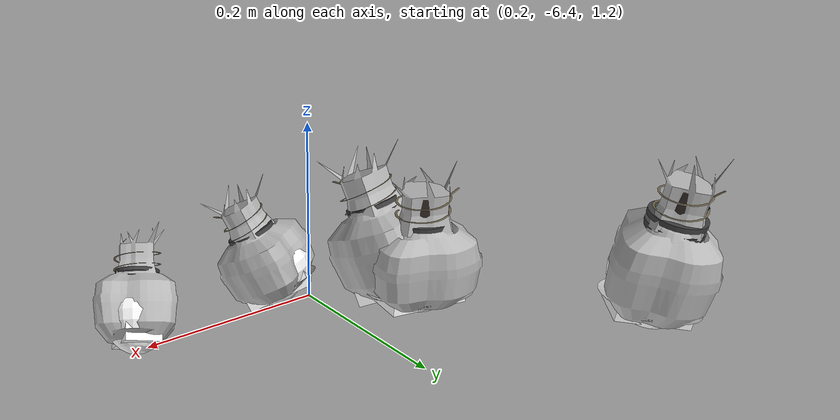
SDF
<sdf version="1.11">
 <world name="peach_orchard">
  <model name="ground">
   <static>true</static>
   <link name="link">
    <visual name="soil">
     <geometry><plane><normal>0 0 1</normal><size>32 22</size></plane></geometry>
     <material>
      <ambient>1 1 1 1</ambient>
      <diffuse>1 1 1 1</diffuse>
      <specular>0.1 0.1 0.1 1</specular>
      <pbr>
       <metal>
        <albedo_map>textures/soil_albedo.png</albedo_map>
        <normal_map type="tangent">textures/soil_normal.png</normal_map>
        <roughness>0.95</roughness>
        <metalness>0</metalness>
       </metal>
      </pbr>
     </material>
    </visual>
    <collision name="c_soil">
     <geometry><plane><normal>0 0 1</normal><size>32 22</size></plane></geometry>
    </collision>
   </link>
  </model>
  <model name="peach_tree_r2_t0_06">
   <pose>0.464874 -6.29415 1.27 0 0.657469 -2.15494</pose>
   <static>true</static>
   <link name="bag">
    <visual name="bag_mesh">
     <pose>0 0 0.0469201 0 0 -0</pose>
     <geometry>
      <mesh><uri>model://peach_sim/meshes/bagged_peach.glb</uri><scale>0.927321 1.12848 1.06637</scale></mesh>
     </geometry>
    </visual>
    <visual name="body">
     <pose>0 0 0.0289201 0 0 0</pose>
     <geometry><ellipsoid><radii>0.0347745 0.0293405 0.0312337</radii></ellipsoid></geometry>
     <material>
      <ambient>1 1 1 1</ambient>
      <diffuse>1 1 1 1</diffuse>
      <specular>0.1 0.1 0.1 1</specular>
      <pbr>
       <metal>
        <albedo_map>textures/paper_bag_albedo.png</albedo_map>
        <normal_map type="tangent">textures/paper_bag_normal.png</normal_map>
        <roughness>0.72</roughness>
        <metalness>0</metalness>
       </metal>
      </pbr>
     </material>
    </visual>
    <visual name="bottom_fold">
     <pose>0 0 0.012 0 0 0.35</pose>
     <geometry><box><size>0.0539005 0.0337416 0.022</size></box></geometry>
     <material>
      <ambient>1 1 1 1</ambient>
      <diffuse>1 1 1 1</diffuse>
      <specular>0.1 0.1 0.1 1</specular>
      <pbr>
       <metal>
        <albedo_map>textures/paper_bag_albedo.png</albedo_map>
        <normal_map type="tangent">textures/paper_bag_normal.png</normal_map>
        <roughness>0.8</roughness>
        <metalness>0</metalness>
       </metal>
      </pbr>
     </material>
    </visual>
    <visual name="fruit">
     <pose>0 0 0.0197675 0 0 0</pose>
     <geometry><sphere><radius>0.0267982</radius></sphere></geometry>
     <material>
      <ambient>1 1 1 1</ambient>
      <diffuse>1 1 1 1</diffuse>
      <specular>0.1 0.1 0.1 1</specular>
      <pbr>
       <metal>
        <albedo_map>textures/fruit_skin_albedo.png</albedo_map>
        <normal_map type="tangent">textures/fruit_skin_normal.png</normal_map>
        <roughness>0.55</roughness>
        <metalness>0</metalness>
       </metal>
      </pbr>
     </material>
    </visual>
    <visual name="neck">
     <pose>0 0 0.0668402 0 0 0</pose>
     <geometry><cylinder><radius>0.013</radius><length>0.018</length></cylinder></geometry>
     <material>
      <ambient>1 1 1 1</ambient>
      <diffuse>1 1 1 1</diffuse>
      <specular>0.1 0.1 0.1 1</specular>
      <pbr>
       <metal>
        <albedo_map>textures/paper_bag_albedo.png</albedo_map>
        <normal_map type="tangent">textures/paper_bag_normal.png</normal_map>
        <roughness>0.75</roughness>
        <metalness>0</metalness>
       </metal>
      </pbr>
     </material>
    </visual>
    <visual name="gather">
     <pose>0 0 0.0478402 0 0 0</pose>
     <geometry><cylinder><radius>0.019</radius><length>0.02</length></cylinder></geometry>
     <material>
      <ambient>1 1 1 1</ambient>
      <diffuse>1 1 1 1</diffuse>
      <specular>0.1 0.1 0.1 1</specular>
      <pbr>
       <metal>
        <albedo_map>textures/paper_bag_albedo.png</albedo_map>
        <normal_map type="tangent">textures/paper_bag_normal.png</normal_map>
        <roughness>0.8</roughness>
        <metalness>0</metalness>
       </metal>
      </pbr>
     </material>
    </visual>
    <visual name="inner_paper">
     <pose>0 0 0.0718402 0 0 0</pose>
     <geometry><cylinder><radius>0.01</radius><length>0.008</length></cylinder></geometry>
     <material>
      <ambient>0.180392 0.14902 0.133333 1</ambient>
      <diffuse>0.180392 0.14902 0.133333 1</diffuse>
      <specular>0.1 0.1 0.1 1</specular>
     </material>
    </visual>
    <visual name="wire_0">
     <pose>0 0 0.0618402 0 0 0</pose>
     <geometry><cylinder><radius>0.0205</radius><length>0.0035</length></cylinder></geometry>
     <material>
      <ambient>0.25 0.25 0.25 1</ambient>
      <diffuse>0.25 0.25 0.25 1</diffuse>
      <specular>0.1 0.1 0.1 1</specular>
     </material>
    </visual>
    <visual name="wire_1">
     <pose>0 0 0.0688402 0 0 0</pose>
     <geometry><cylinder><radius>0.0205</radius><length>0.0035</length></cylinder></geometry>
     <material>
      <ambient>0.25 0.25 0.25 1</ambient>
      <diffuse>0.25 0.25 0.25 1</diffuse>
      <specular>0.1 0.1 0.1 1</specular>
     </material>
    </visual>
    <visual name="wire_tail">
     <pose>0.01 0 0.0698402 0 0.521618 0</pose>
     <geometry><cylinder><radius>0.0012</radius><length>0.026</length></cylinder></geometry>
     <material>
      <ambient>0.25 0.25 0.25 1</ambient>
      <diffuse>0.25 0.25 0.25 1</diffuse>
      <specular>0.1 0.1 0.1 1</specular>
     </material>
    </visual>
    <collision name="c_body">
     <pose>0 0 0.0289201 0 0 0</pose>
     <geometry><cylinder><radius>0.0347745</radius><length>0.0578402</length></cylinder></geometry>
    </collision>
   </link>
  </model>
  <model name="peach_tree_r2_t0_08">
   <pose>0.379259 -6.18105 1.34399 0 0.476643 -0.948095</pose>
   <static>true</static>
   <link name="bag">
    <visual name="bag_mesh">
     <pose>0 0 0.0427684 0 0 -0</pose>
     <geometry>
      <mesh><uri>model://peach_sim/meshes/bagged_peach.glb</uri><scale>0.965336 1.16917 0.972009</scale></mesh>
     </geometry>
    </visual>
    <visual name="body">
     <pose>0 0 0.0247684 0 0 0</pose>
     <geometry><ellipsoid><radii>0.0362001 0.0303985 0.0267499</radii></ellipsoid></geometry>
     <material>
      <ambient>1 1 1 1</ambient>
      <diffuse>1 1 1 1</diffuse>
      <specular>0.1 0.1 0.1 1</specular>
      <pbr>
       <metal>
        <albedo_map>textures/paper_bag_albedo.png</albedo_map>
        <normal_map type="tangent">textures/paper_bag_normal.png</normal_map>
        <roughness>0.72</roughness>
        <metalness>0</metalness>
       </metal>
      </pbr>
     </material>
    </visual>
    <visual name="bottom_fold">
     <pose>0 0 0.012 0 0 0.35</pose>
     <geometry><box><size>0.0561102 0.0349583 0.022</size></box></geometry>
     <material>
      <ambient>1 1 1 1</ambient>
      <diffuse>1 1 1 1</diffuse>
      <specular>0.1 0.1 0.1 1</specular>
      <pbr>
       <metal>
        <albedo_map>textures/paper_bag_albedo.png</albedo_map>
        <normal_map type="tangent">textures/paper_bag_normal.png</normal_map>
        <roughness>0.8</roughness>
        <metalness>0</metalness>
       </metal>
      </pbr>
     </material>
    </visual>
    <visual name="fruit">
     <pose>0 0 0.0195773 0 0 0</pose>
     <geometry><sphere><radius>0.0266004</radius></sphere></geometry>
     <material>
      <ambient>1 1 1 1</ambient>
      <diffuse>1 1 1 1</diffuse>
      <specular>0.1 0.1 0.1 1</specular>
      <pbr>
       <metal>
        <albedo_map>textures/fruit_skin_albedo.png</albedo_map>
        <normal_map type="tangent">textures/fruit_skin_normal.png</normal_map>
        <roughness>0.55</roughness>
        <metalness>0</metalness>
       </metal>
      </pbr>
     </material>
    </visual>
    <visual name="neck">
     <pose>0 0 0.0585368 0 0 0</pose>
     <geometry><cylinder><radius>0.013</radius><length>0.018</length></cylinder></geometry>
     <material>
      <ambient>1 1 1 1</ambient>
      <diffuse>1 1 1 1</diffuse>
      <specular>0.1 0.1 0.1 1</specular>
      <pbr>
       <metal>
        <albedo_map>textures/paper_bag_albedo.png</albedo_map>
        <normal_map type="tangent">textures/paper_bag_normal.png</normal_map>
        <roughness>0.75</roughness>
        <metalness>0</metalness>
       </metal>
      </pbr>
     </material>
    </visual>
    <visual name="gather">
     <pose>0 0 0.0395368 0 0 0</pose>
     <geometry><cylinder><radius>0.019</radius><length>0.02</length></cylinder></geometry>
     <material>
      <ambient>1 1 1 1</ambient>
      <diffuse>1 1 1 1</diffuse>
      <specular>0.1 0.1 0.1 1</specular>
      <pbr>
       <metal>
        <albedo_map>textures/paper_bag_albedo.png</albedo_map>
        <normal_map type="tangent">textures/paper_bag_normal.png</normal_map>
        <roughness>0.8</roughness>
        <metalness>0</metalness>
       </metal>
      </pbr>
     </material>
    </visual>
    <visual name="inner_paper">
     <pose>0 0 0.0635368 0 0 0</pose>
     <geometry><cylinder><radius>0.01</radius><length>0.008</length></cylinder></geometry>
     <material>
      <ambient>0.180392 0.14902 0.133333 1</ambient>
      <diffuse>0.180392 0.14902 0.133333 1</diffuse>
      <specular>0.1 0.1 0.1 1</specular>
     </material>
    </visual>
    <visual name="wire_0">
     <pose>0 0 0.0535368 0 0 0</pose>
     <geometry><cylinder><radius>0.0205</radius><length>0.0035</length></cylinder></geometry>
     <material>
      <ambient>0.25 0.25 0.25 1</ambient>
      <diffuse>0.25 0.25 0.25 1</diffuse>
      <specular>0.1 0.1 0.1 1</specular>
     </material>
    </visual>
    <visual name="wire_1">
     <pose>0 0 0.0605368 0 0 0</pose>
     <geometry><cylinder><radius>0.0205</radius><length>0.0035</length></cylinder></geometry>
     <material>
      <ambient>0.25 0.25 0.25 1</ambient>
      <diffuse>0.25 0.25 0.25 1</diffuse>
      <specular>0.1 0.1 0.1 1</specular>
     </material>
    </visual>
    <visual name="wire_tail">
     <pose>0.01 0 0.0615368 0 0.521618 0</pose>
     <geometry><cylinder><radius>0.0012</radius><length>0.026</length></cylinder></geometry>
     <material>
      <ambient>0.25 0.25 0.25 1</ambient>
      <diffuse>0.25 0.25 0.25 1</diffuse>
      <specular>0.1 0.1 0.1 1</specular>
     </material>
    </visual>
    <collision name="c_body">
     <pose>0 0 0.0247684 0 0 0</pose>
     <geometry><cylinder><radius>0.0362001</radius><length>0.0495368</length></cylinder></geometry>
    </collision>
   </link>
  </model>
  <model name="peach_tree_r2_t0_09">
   <pose>0.360717 -6.03965 1.39789 0 0.410333 -1.22162</pose>
   <static>true</static>
   <link name="bag">
    <visual name="bag_mesh">
     <pose>0 0 0.0487442 0 0 -0</pose>
     <geometry>
      <mesh><uri>model://peach_sim/meshes/bagged_peach.glb</uri><scale>1.0778 1.21982 1.10782</scale></mesh>
     </geometry>
    </visual>
    <visual name="body">
     <pose>0 0 0.0307442 0 0 0</pose>
     <geometry><ellipsoid><radii>0.0404176 0.0317154 0.0332037</radii></ellipsoid></geometry>
     <material>
      <ambient>1 1 1 1</ambient>
      <diffuse>1 1 1 1</diffuse>
      <specular>0.1 0.1 0.1 1</specular>
      <pbr>
       <metal>
        <albedo_map>textures/paper_bag_albedo.png</albedo_map>
        <normal_map type="tangent">textures/paper_bag_normal.png</normal_map>
        <roughness>0.72</roughness>
        <metalness>0</metalness>
       </metal>
      </pbr>
     </material>
    </visual>
    <visual name="bottom_fold">
     <pose>0 0 0.012 0 0 0.35</pose>
     <geometry><box><size>0.0626472 0.0364727 0.022</size></box></geometry>
     <material>
      <ambient>1 1 1 1</ambient>
      <diffuse>1 1 1 1</diffuse>
      <specular>0.1 0.1 0.1 1</specular>
      <pbr>
       <metal>
        <albedo_map>textures/paper_bag_albedo.png</albedo_map>
        <normal_map type="tangent">textures/paper_bag_normal.png</normal_map>
        <roughness>0.8</roughness>
        <metalness>0</metalness>
       </metal>
      </pbr>
     </material>
    </visual>
    <visual name="fruit">
     <pose>0 0 0.0215987 0 0 0</pose>
     <geometry><sphere><radius>0.0287026</radius></sphere></geometry>
     <material>
      <ambient>1 1 1 1</ambient>
      <diffuse>1 1 1 1</diffuse>
      <specular>0.1 0.1 0.1 1</specular>
      <pbr>
       <metal>
        <albedo_map>textures/fruit_skin_albedo.png</albedo_map>
        <normal_map type="tangent">textures/fruit_skin_normal.png</normal_map>
        <roughness>0.55</roughness>
        <metalness>0</metalness>
       </metal>
      </pbr>
     </material>
    </visual>
    <visual name="neck">
     <pose>0 0 0.0704883 0 0 0</pose>
     <geometry><cylinder><radius>0.013</radius><length>0.018</length></cylinder></geometry>
     <material>
      <ambient>1 1 1 1</ambient>
      <diffuse>1 1 1 1</diffuse>
      <specular>0.1 0.1 0.1 1</specular>
      <pbr>
       <metal>
        <albedo_map>textures/paper_bag_albedo.png</albedo_map>
        <normal_map type="tangent">textures/paper_bag_normal.png</normal_map>
        <roughness>0.75</roughness>
        <metalness>0</metalness>
       </metal>
      </pbr>
     </material>
    </visual>
    <visual name="gather">
     <pose>0 0 0.0514883 0 0 0</pose>
     <geometry><cylinder><radius>0.019</radius><length>0.02</length></cylinder></geometry>
     <material>
      <ambient>1 1 1 1</ambient>
      <diffuse>1 1 1 1</diffuse>
      <specular>0.1 0.1 0.1 1</specular>
      <pbr>
       <metal>
        <albedo_map>textures/paper_bag_albedo.png</albedo_map>
        <normal_map type="tangent">textures/paper_bag_normal.png</normal_map>
        <roughness>0.8</roughness>
        <metalness>0</metalness>
       </metal>
      </pbr>
     </material>
    </visual>
    <visual name="inner_paper">
     <pose>0 0 0.0754883 0 0 0</pose>
     <geometry><cylinder><radius>0.01</radius><length>0.008</length></cylinder></geometry>
     <material>
      <ambient>0.180392 0.14902 0.133333 1</ambient>
      <diffuse>0.180392 0.14902 0.133333 1</diffuse>
      <specular>0.1 0.1 0.1 1</specular>
     </material>
    </visual>
    <visual name="wire_0">
     <pose>0 0 0.0654883 0 0 0</pose>
     <geometry><cylinder><radius>0.0205</radius><length>0.0035</length></cylinder></geometry>
     <material>
      <ambient>0.25 0.25 0.25 1</ambient>
      <diffuse>0.25 0.25 0.25 1</diffuse>
      <specular>0.1 0.1 0.1 1</specular>
     </material>
    </visual>
    <visual name="wire_1">
     <pose>0 0 0.0724883 0 0 0</pose>
     <geometry><cylinder><radius>0.0205</radius><length>0.0035</length></cylinder></geometry>
     <material>
      <ambient>0.25 0.25 0.25 1</ambient>
      <diffuse>0.25 0.25 0.25 1</diffuse>
      <specular>0.1 0.1 0.1 1</specular>
     </material>
    </visual>
    <visual name="wire_tail">
     <pose>0.01 0 0.0734883 0 0.521618 0</pose>
     <geometry><cylinder><radius>0.0012</radius><length>0.026</length></cylinder></geometry>
     <material>
      <ambient>0.25 0.25 0.25 1</ambient>
      <diffuse>0.25 0.25 0.25 1</diffuse>
      <specular>0.1 0.1 0.1 1</specular>
     </material>
    </visual>
    <collision name="c_body">
     <pose>0 0 0.0307442 0 0 0</pose>
     <geometry><cylinder><radius>0.0404176</radius><length>0.0614883</length></cylinder></geometry>
    </collision>
   </link>
  </model>
  <model name="peach_tree_r2_t0_10">
   <pose>0.35749 -6.02405 1.39478 0 0.0250314 2.63652</pose>
   <static>true</static>
   <link name="bag">
    <visual name="bag_mesh">
     <pose>0 0 0.0461722 0 0 0</pose>
     <geometry>
      <mesh><uri>model://peach_sim/meshes/bagged_peach.glb</uri><scale>1.08548 1.16093 1.04937</scale></mesh>
     </geometry>
    </visual>
    <visual name="body">
     <pose>0 0 0.0281722 0 0 0</pose>
     <geometry><ellipsoid><radii>0.0407055 0.0301841 0.030426</radii></ellipsoid></geometry>
     <material>
      <ambient>1 1 1 1</ambient>
      <diffuse>1 1 1 1</diffuse>
      <specular>0.1 0.1 0.1 1</specular>
      <pbr>
       <metal>
        <albedo_map>textures/paper_bag_albedo.png</albedo_map>
        <normal_map type="tangent">textures/paper_bag_normal.png</normal_map>
        <roughness>0.72</roughness>
        <metalness>0</metalness>
       </metal>
      </pbr>
     </material>
    </visual>
    <visual name="bottom_fold">
     <pose>0 0 0.012 0 0 0.35</pose>
     <geometry><box><size>0.0630936 0.0347118 0.022</size></box></geometry>
     <material>
      <ambient>1 1 1 1</ambient>
      <diffuse>1 1 1 1</diffuse>
      <specular>0.1 0.1 0.1 1</specular>
      <pbr>
       <metal>
        <albedo_map>textures/paper_bag_albedo.png</albedo_map>
        <normal_map type="tangent">textures/paper_bag_normal.png</normal_map>
        <roughness>0.8</roughness>
        <metalness>0</metalness>
       </metal>
      </pbr>
     </material>
    </visual>
    <visual name="fruit">
     <pose>0 0 0.0170371 0 0 0</pose>
     <geometry><sphere><radius>0.0239586</radius></sphere></geometry>
     <material>
      <ambient>1 1 1 1</ambient>
      <diffuse>1 1 1 1</diffuse>
      <specular>0.1 0.1 0.1 1</specular>
      <pbr>
       <metal>
        <albedo_map>textures/fruit_skin_albedo.png</albedo_map>
        <normal_map type="tangent">textures/fruit_skin_normal.png</normal_map>
        <roughness>0.55</roughness>
        <metalness>0</metalness>
       </metal>
      </pbr>
     </material>
    </visual>
    <visual name="neck">
     <pose>0 0 0.0653444 0 0 0</pose>
     <geometry><cylinder><radius>0.013</radius><length>0.018</length></cylinder></geometry>
     <material>
      <ambient>1 1 1 1</ambient>
      <diffuse>1 1 1 1</diffuse>
      <specular>0.1 0.1 0.1 1</specular>
      <pbr>
       <metal>
        <albedo_map>textures/paper_bag_albedo.png</albedo_map>
        <normal_map type="tangent">textures/paper_bag_normal.png</normal_map>
        <roughness>0.75</roughness>
        <metalness>0</metalness>
       </metal>
      </pbr>
     </material>
    </visual>
    <visual name="gather">
     <pose>0 0 0.0463444 0 0 0</pose>
     <geometry><cylinder><radius>0.019</radius><length>0.02</length></cylinder></geometry>
     <material>
      <ambient>1 1 1 1</ambient>
      <diffuse>1 1 1 1</diffuse>
      <specular>0.1 0.1 0.1 1</specular>
      <pbr>
       <metal>
        <albedo_map>textures/paper_bag_albedo.png</albedo_map>
        <normal_map type="tangent">textures/paper_bag_normal.png</normal_map>
        <roughness>0.8</roughness>
        <metalness>0</metalness>
       </metal>
      </pbr>
     </material>
    </visual>
    <visual name="inner_paper">
     <pose>0 0 0.0703444 0 0 0</pose>
     <geometry><cylinder><radius>0.01</radius><length>0.008</length></cylinder></geometry>
     <material>
      <ambient>0.180392 0.14902 0.133333 1</ambient>
      <diffuse>0.180392 0.14902 0.133333 1</diffuse>
      <specular>0.1 0.1 0.1 1</specular>
     </material>
    </visual>
    <visual name="wire_0">
     <pose>0 0 0.0603444 0 0 0</pose>
     <geometry><cylinder><radius>0.0205</radius><length>0.0035</length></cylinder></geometry>
     <material>
      <ambient>0.25 0.25 0.25 1</ambient>
      <diffuse>0.25 0.25 0.25 1</diffuse>
      <specular>0.1 0.1 0.1 1</specular>
     </material>
    </visual>
    <visual name="wire_1">
     <pose>0 0 0.0673444 0 0 0</pose>
     <geometry><cylinder><radius>0.0205</radius><length>0.0035</length></cylinder></geometry>
     <material>
      <ambient>0.25 0.25 0.25 1</ambient>
      <diffuse>0.25 0.25 0.25 1</diffuse>
      <specular>0.1 0.1 0.1 1</specular>
     </material>
    </visual>
    <visual name="wire_tail">
     <pose>0.01 0 0.0683444 0 0.521618 0</pose>
     <geometry><cylinder><radius>0.0012</radius><length>0.026</length></cylinder></geometry>
     <material>
      <ambient>0.25 0.25 0.25 1</ambient>
      <diffuse>0.25 0.25 0.25 1</diffuse>
      <specular>0.1 0.1 0.1 1</specular>
     </material>
    </visual>
    <collision name="c_body">
     <pose>0 0 0.0281722 0 0 0</pose>
     <geometry><cylinder><radius>0.0407055</radius><length>0.0563444</length></cylinder></geometry>
    </collision>
   </link>
  </model>
  <model name="peach_tree_r2_t0_11">
   <pose>0.316855 -5.83513 1.45 0 0.194589 2.24225</pose>
   <static>true</static>
   <link name="bag">
    <visual name="bag_mesh">
     <pose>0 0 0.0495293 0 0 0</pose>
     <geometry>
      <mesh><uri>model://peach_sim/meshes/bagged_peach.glb</uri><scale>0.925047 1.09797 1.12567</scale></mesh>
     </geometry>
    </visual>
    <visual name="body">
     <pose>0 0 0.0315293 0 0 0</pose>
     <geometry><ellipsoid><radii>0.0346893 0.0285473 0.0340517</radii></ellipsoid></geometry>
     <material>
      <ambient>1 1 1 1</ambient>
      <diffuse>1 1 1 1</diffuse>
      <specular>0.1 0.1 0.1 1</specular>
      <pbr>
       <metal>
        <albedo_map>textures/paper_bag_albedo.png</albedo_map>
        <normal_map type="tangent">textures/paper_bag_normal.png</normal_map>
        <roughness>0.72</roughness>
        <metalness>0</metalness>
       </metal>
      </pbr>
     </material>
    </visual>
    <visual name="bottom_fold">
     <pose>0 0 0.012 0 0 0.35</pose>
     <geometry><box><size>0.0537684 0.0328294 0.022</size></box></geometry>
     <material>
      <ambient>1 1 1 1</ambient>
      <diffuse>1 1 1 1</diffuse>
      <specular>0.1 0.1 0.1 1</specular>
      <pbr>
       <metal>
        <albedo_map>textures/paper_bag_albedo.png</albedo_map>
        <normal_map type="tangent">textures/paper_bag_normal.png</normal_map>
        <roughness>0.8</roughness>
        <metalness>0</metalness>
       </metal>
      </pbr>
     </material>
    </visual>
    <visual name="fruit">
     <pose>0 0 0.0186047 0 0 0</pose>
     <geometry><sphere><radius>0.0255889</radius></sphere></geometry>
     <material>
      <ambient>1 1 1 1</ambient>
      <diffuse>1 1 1 1</diffuse>
      <specular>0.1 0.1 0.1 1</specular>
      <pbr>
       <metal>
        <albedo_map>textures/fruit_skin_albedo.png</albedo_map>
        <normal_map type="tangent">textures/fruit_skin_normal.png</normal_map>
        <roughness>0.55</roughness>
        <metalness>0</metalness>
       </metal>
      </pbr>
     </material>
    </visual>
    <visual name="neck">
     <pose>0 0 0.0720586 0 0 0</pose>
     <geometry><cylinder><radius>0.013</radius><length>0.018</length></cylinder></geometry>
     <material>
      <ambient>1 1 1 1</ambient>
      <diffuse>1 1 1 1</diffuse>
      <specular>0.1 0.1 0.1 1</specular>
      <pbr>
       <metal>
        <albedo_map>textures/paper_bag_albedo.png</albedo_map>
        <normal_map type="tangent">textures/paper_bag_normal.png</normal_map>
        <roughness>0.75</roughness>
        <metalness>0</metalness>
       </metal>
      </pbr>
     </material>
    </visual>
    <visual name="gather">
     <pose>0 0 0.0530586 0 0 0</pose>
     <geometry><cylinder><radius>0.019</radius><length>0.02</length></cylinder></geometry>
     <material>
      <ambient>1 1 1 1</ambient>
      <diffuse>1 1 1 1</diffuse>
      <specular>0.1 0.1 0.1 1</specular>
      <pbr>
       <metal>
        <albedo_map>textures/paper_bag_albedo.png</albedo_map>
        <normal_map type="tangent">textures/paper_bag_normal.png</normal_map>
        <roughness>0.8</roughness>
        <metalness>0</metalness>
       </metal>
      </pbr>
     </material>
    </visual>
    <visual name="inner_paper">
     <pose>0 0 0.0770586 0 0 0</pose>
     <geometry><cylinder><radius>0.01</radius><length>0.008</length></cylinder></geometry>
     <material>
      <ambient>0.180392 0.14902 0.133333 1</ambient>
      <diffuse>0.180392 0.14902 0.133333 1</diffuse>
      <specular>0.1 0.1 0.1 1</specular>
     </material>
    </visual>
    <visual name="wire_0">
     <pose>0 0 0.0670586 0 0 0</pose>
     <geometry><cylinder><radius>0.0205</radius><length>0.0035</length></cylinder></geometry>
     <material>
      <ambient>0.25 0.25 0.25 1</ambient>
      <diffuse>0.25 0.25 0.25 1</diffuse>
      <specular>0.1 0.1 0.1 1</specular>
     </material>
    </visual>
    <visual name="wire_1">
     <pose>0 0 0.0740586 0 0 0</pose>
     <geometry><cylinder><radius>0.0205</radius><length>0.0035</length></cylinder></geometry>
     <material>
      <ambient>0.25 0.25 0.25 1</ambient>
      <diffuse>0.25 0.25 0.25 1</diffuse>
      <specular>0.1 0.1 0.1 1</specular>
     </material>
    </visual>
    <visual name="wire_tail">
     <pose>0.01 0 0.0750586 0 0.521618 0</pose>
     <geometry><cylinder><radius>0.0012</radius><length>0.026</length></cylinder></geometry>
     <material>
      <ambient>0.25 0.25 0.25 1</ambient>
      <diffuse>0.25 0.25 0.25 1</diffuse>
      <specular>0.1 0.1 0.1 1</specular>
     </material>
    </visual>
    <collision name="c_body">
     <pose>0 0 0.0315293 0 0 0</pose>
     <geometry><cylinder><radius>0.0346893</radius><length>0.0630586</length></cylinder></geometry>
    </collision>
   </link>
  </model>
 </world>
</sdf>
